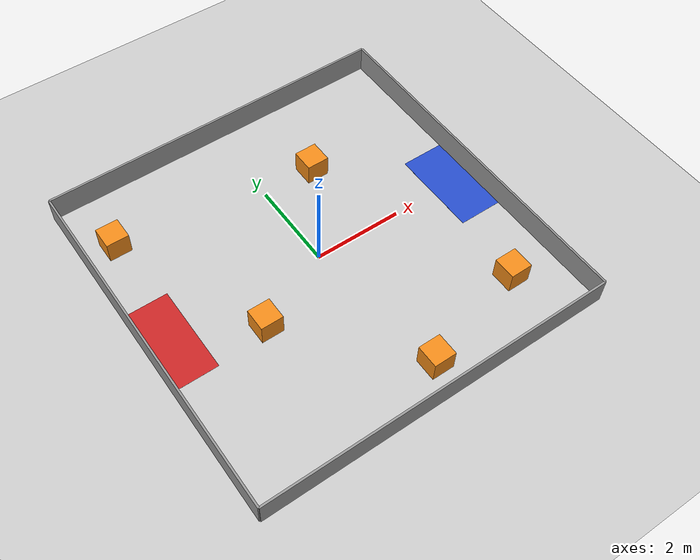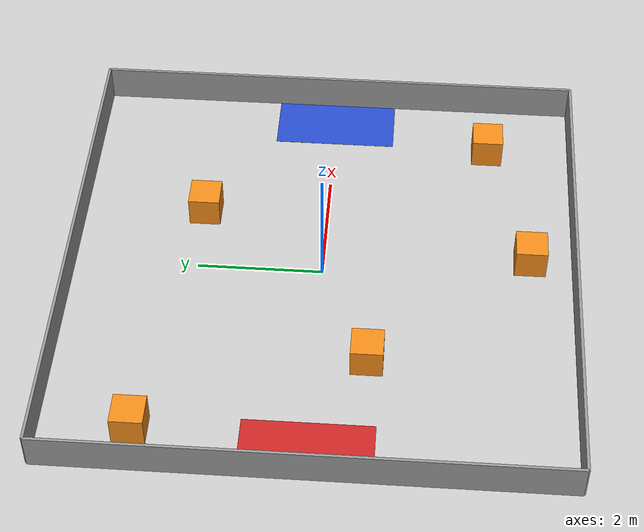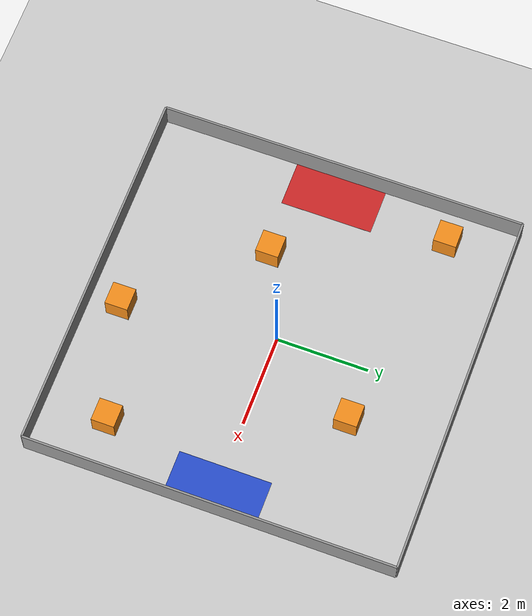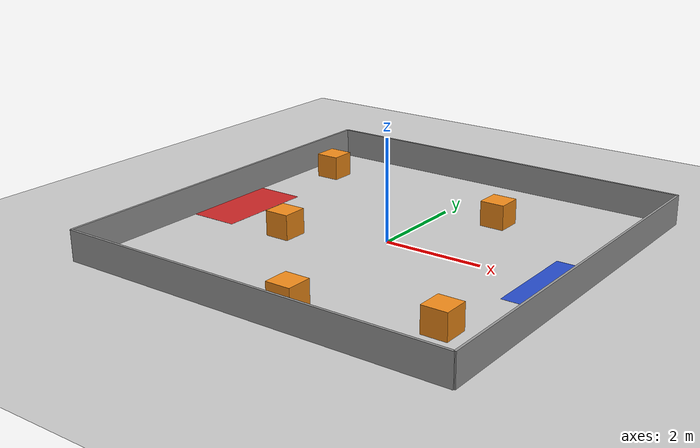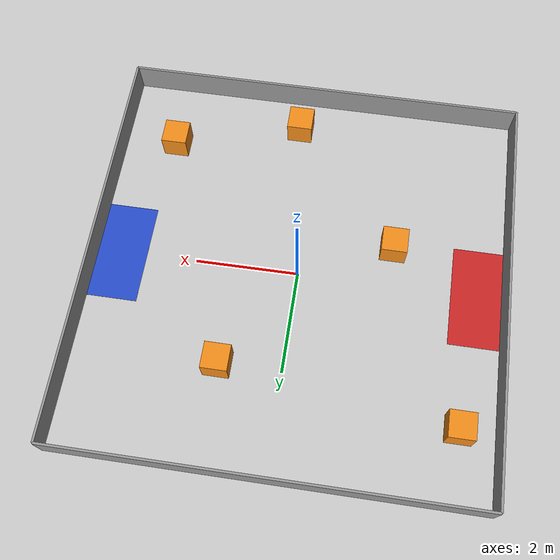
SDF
<?xml version="1.0" ?>
<sdf version="1.7">
  <world name="totami">

    <physics type='ode'>
      <real_time_update_rate>1000</real_time_update_rate>
      <max_step_size>0.001</max_step_size>
      <real_time_factor>1</real_time_factor>
      <ode>
        <solver>
          <type>quick</type>
          <iters>150</iters>
          <precon_iters>0</precon_iters>
          <sor>1.4</sor>
          <use_dynamic_moi_rescaling>1</use_dynamic_moi_rescaling>
        </solver>
        <constraints>
          <cfm>1e-05</cfm>
          <erp>0.2</erp>
          <!-- Как в maze.world: при 2000 ODE выталкивал проникающие контакты
               почти любой скоростью и акселерометр IMU шумел на +-1.6 м/с2 у
               стоящего робота. -->
          <contact_max_correcting_vel>100</contact_max_correcting_vel>
          <contact_surface_layer>0.001</contact_surface_layer>
        </constraints>
      </ode>
    </physics>

    <gravity>0 0 -9.8</gravity>
    <magnetic_field>6e-06 2.3e-05 -4.2e-05</magnetic_field>
    <atmosphere type='adiabatic' />
    <scene>
      <ambient>0.4 0.4 0.4 1</ambient>
      <background>0.7 0.7 0.7 1</background>
      <shadows>1</shadows>
    </scene>

    <light name='sun' type='directional'>
      <cast_shadows>1</cast_shadows>
      <pose>0 0 10 0 -0 0</pose>
      <diffuse>0.8 0.8 0.8 1</diffuse>
      <specular>0.2 0.2 0.2 1</specular>
      <attenuation>
        <range>1000</range>
        <constant>0.9</constant>
        <linear>0.01</linear>
        <quadratic>0.001</quadratic>
      </attenuation>
      <direction>-0.5 0.1 -0.9</direction>
      <spot>
        <inner_angle>0</inner_angle>
        <outer_angle>0</outer_angle>
        <falloff>0</falloff>
      </spot>
    </light>

    <model name='ground_plane'>
      <static>1</static>
      <link name='link'>
        <collision name='collision'>
          <geometry>
            <plane>
              <normal>0 0 1</normal>
              <size>100 100</size>
            </plane>
          </geometry>
          <surface>
            <friction>
              <ode>
                <mu>100</mu>
                <mu2>50</mu2>
              </ode>
              <torsional>
                <ode />
              </torsional>
            </friction>
            <contact>
              <ode />
            </contact>
            <bounce />
          </surface>
          <max_contacts>10</max_contacts>
        </collision>
        <visual name='visual'>
          <cast_shadows>0</cast_shadows>
          <geometry>
            <plane>
              <normal>0 0 1</normal>
              <size>100 100</size>
            </plane>
          </geometry>
          <material>
            <script>
              <uri>file://media/materials/scripts/gazebo.material</uri>
              <name>Gazebo/Grey</name>
            </script>
          </material>
        </visual>
        <self_collide>0</self_collide>
        <enable_wind>0</enable_wind>
        <kinematic>0</kinematic>
      </link>
    </model>

    <model name='totami_built'>
      <static>1</static>
      <link name="Wall_North">
        <collision name="Wall_North_Collision">
          <geometry>
            <box>
              <size>8.0 0.045 0.6</size>
            </box>
          </geometry>
          <pose>0 0 0.3 0 -0 0</pose>
          <max_contacts>10</max_contacts>
          <surface>
            <contact>
              <ode />
            </contact>
            <bounce />
            <friction>
              <torsional>
                <ode />
              </torsional>
              <ode />
            </friction>
          </surface>
        </collision>
        <visual name="Wall_North_Visual">
          <pose>0 0 0.3 0 -0 0</pose>
          <geometry>
            <box>
              <size>8.0 0.045 0.6</size>
            </box>
          </geometry>
          <material>
            <script>
              <uri>file://media/materials/scripts/gazebo.material</uri>
              <name>Gazebo/Grey</name>
            </script>
            <ambient>1 1 1 1</ambient>
          </material>
          <meta>
            <layer>0</layer>
          </meta>
        </visual>
        <pose>0.0 4.0 0 0 -0 0.0</pose>
        <self_collide>0</self_collide>
        <enable_wind>0</enable_wind>
        <kinematic>0</kinematic>
      </link>
      <link name="Wall_South">
        <collision name="Wall_South_Collision">
          <geometry>
            <box>
              <size>8.0 0.045 0.6</size>
            </box>
          </geometry>
          <pose>0 0 0.3 0 -0 0</pose>
          <max_contacts>10</max_contacts>
          <surface>
            <contact>
              <ode />
            </contact>
            <bounce />
            <friction>
              <torsional>
                <ode />
              </torsional>
              <ode />
            </friction>
          </surface>
        </collision>
        <visual name="Wall_South_Visual">
          <pose>0 0 0.3 0 -0 0</pose>
          <geometry>
            <box>
              <size>8.0 0.045 0.6</size>
            </box>
          </geometry>
          <material>
            <script>
              <uri>file://media/materials/scripts/gazebo.material</uri>
              <name>Gazebo/Grey</name>
            </script>
            <ambient>1 1 1 1</ambient>
          </material>
          <meta>
            <layer>0</layer>
          </meta>
        </visual>
        <pose>0.0 -4.0 0 0 -0 0.0</pose>
        <self_collide>0</self_collide>
        <enable_wind>0</enable_wind>
        <kinematic>0</kinematic>
      </link>
      <link name="Wall_East">
        <collision name="Wall_East_Collision">
          <geometry>
            <box>
              <size>8.0 0.045 0.6</size>
            </box>
          </geometry>
          <pose>0 0 0.3 0 -0 0</pose>
          <max_contacts>10</max_contacts>
          <surface>
            <contact>
              <ode />
            </contact>
            <bounce />
            <friction>
              <torsional>
                <ode />
              </torsional>
              <ode />
            </friction>
          </surface>
        </collision>
        <visual name="Wall_East_Visual">
          <pose>0 0 0.3 0 -0 0</pose>
          <geometry>
            <box>
              <size>8.0 0.045 0.6</size>
            </box>
          </geometry>
          <material>
            <script>
              <uri>file://media/materials/scripts/gazebo.material</uri>
              <name>Gazebo/Grey</name>
            </script>
            <ambient>1 1 1 1</ambient>
          </material>
          <meta>
            <layer>0</layer>
          </meta>
        </visual>
        <pose>4.0 0.0 0 0 -0 1.5708</pose>
        <self_collide>0</self_collide>
        <enable_wind>0</enable_wind>
        <kinematic>0</kinematic>
      </link>
      <link name="Wall_West">
        <collision name="Wall_West_Collision">
          <geometry>
            <box>
              <size>8.0 0.045 0.6</size>
            </box>
          </geometry>
          <pose>0 0 0.3 0 -0 0</pose>
          <max_contacts>10</max_contacts>
          <surface>
            <contact>
              <ode />
            </contact>
            <bounce />
            <friction>
              <torsional>
                <ode />
              </torsional>
              <ode />
            </friction>
          </surface>
        </collision>
        <visual name="Wall_West_Visual">
          <pose>0 0 0.3 0 -0 0</pose>
          <geometry>
            <box>
              <size>8.0 0.045 0.6</size>
            </box>
          </geometry>
          <material>
            <script>
              <uri>file://media/materials/scripts/gazebo.material</uri>
              <name>Gazebo/Grey</name>
            </script>
            <ambient>1 1 1 1</ambient>
          </material>
          <meta>
            <layer>0</layer>
          </meta>
        </visual>
        <pose>-4.0 0.0 0 0 -0 1.5708</pose>
        <self_collide>0</self_collide>
        <enable_wind>0</enable_wind>
        <kinematic>0</kinematic>
      </link>
      <link name="Pad_Blue">
        <visual name="Pad_Blue_Visual">
          <pose>0 0 0 0 -0 0</pose>
          <geometry>
            <box>
              <size>1.0 2.0 0.001</size>
            </box>
          </geometry>
          <material>
            <script>
              <uri>file://media/materials/scripts/gazebo.material</uri>
              <name>Gazebo/Blue</name>
            </script>
            <ambient>1 1 1 1</ambient>
          </material>
          <meta>
            <layer>0</layer>
          </meta>
        </visual>
        <pose>3.5 0.0 0.001 0 -0 0</pose>
        <self_collide>0</self_collide>
        <enable_wind>0</enable_wind>
        <kinematic>0</kinematic>
      </link>
      <link name="Pad_Red">
        <visual name="Pad_Red_Visual">
          <pose>0 0 0 0 -0 0</pose>
          <geometry>
            <box>
              <size>1.0 2.0 0.001</size>
            </box>
          </geometry>
          <material>
            <script>
              <uri>file://media/materials/scripts/gazebo.material</uri>
              <name>Gazebo/Red</name>
            </script>
            <ambient>1 1 1 1</ambient>
          </material>
          <meta>
            <layer>0</layer>
          </meta>
        </visual>
        <pose>-3.5 0.0 0.001 0 -0 0</pose>
        <self_collide>0</self_collide>
        <enable_wind>0</enable_wind>
        <kinematic>0</kinematic>
      </link>
      <pose>0 0 0 0 -0 0</pose>
    </model>

    <model name='Obstacle_1'>
      <static>1</static>
      <pose>1.2 2.0 0 0 -0 0</pose>
      <link name='link'>
        <collision name='collision'>
          <geometry>
            <box>
              <size>0.5 0.5 0.5</size>
            </box>
          </geometry>
          <pose>0 0 0.25 0 -0 0</pose>
          <max_contacts>10</max_contacts>
          <surface>
            <contact>
              <ode />
            </contact>
            <bounce />
            <friction>
              <torsional>
                <ode />
              </torsional>
              <ode />
            </friction>
          </surface>
        </collision>
        <visual name='visual'>
          <pose>0 0 0.25 0 -0 0</pose>
          <geometry>
            <box>
              <size>0.5 0.5 0.5</size>
            </box>
          </geometry>
          <material>
            <script>
              <uri>file://media/materials/scripts/gazebo.material</uri>
              <name>Gazebo/Orange</name>
            </script>
            <ambient>1 1 1 1</ambient>
          </material>
        </visual>
        <self_collide>0</self_collide>
        <enable_wind>0</enable_wind>
        <kinematic>0</kinematic>
      </link>
    </model>

    <model name='Obstacle_2'>
      <static>1</static>
      <pose>-1.8 -0.8 0 0 -0 0</pose>
      <link name='link'>
        <collision name='collision'>
          <geometry>
            <box>
              <size>0.5 0.5 0.5</size>
            </box>
          </geometry>
          <pose>0 0 0.25 0 -0 0</pose>
          <max_contacts>10</max_contacts>
          <surface>
            <contact>
              <ode />
            </contact>
            <bounce />
            <friction>
              <torsional>
                <ode />
              </torsional>
              <ode />
            </friction>
          </surface>
        </collision>
        <visual name='visual'>
          <pose>0 0 0.25 0 -0 0</pose>
          <geometry>
            <box>
              <size>0.5 0.5 0.5</size>
            </box>
          </geometry>
          <material>
            <script>
              <uri>file://media/materials/scripts/gazebo.material</uri>
              <name>Gazebo/Orange</name>
            </script>
            <ambient>1 1 1 1</ambient>
          </material>
        </visual>
        <self_collide>0</self_collide>
        <enable_wind>0</enable_wind>
        <kinematic>0</kinematic>
      </link>
    </model>

    <model name='Obstacle_3'>
      <static>1</static>
      <pose>2.9 -2.6 0 0 -0 0</pose>
      <link name='link'>
        <collision name='collision'>
          <geometry>
            <box>
              <size>0.5 0.5 0.5</size>
            </box>
          </geometry>
          <pose>0 0 0.25 0 -0 0</pose>
          <max_contacts>10</max_contacts>
          <surface>
            <contact>
              <ode />
            </contact>
            <bounce />
            <friction>
              <torsional>
                <ode />
              </torsional>
              <ode />
            </friction>
          </surface>
        </collision>
        <visual name='visual'>
          <pose>0 0 0.25 0 -0 0</pose>
          <geometry>
            <box>
              <size>0.5 0.5 0.5</size>
            </box>
          </geometry>
          <material>
            <script>
              <uri>file://media/materials/scripts/gazebo.material</uri>
              <name>Gazebo/Orange</name>
            </script>
            <ambient>1 1 1 1</ambient>
          </material>
        </visual>
        <self_collide>0</self_collide>
        <enable_wind>0</enable_wind>
        <kinematic>0</kinematic>
      </link>
    </model>

    <model name='Obstacle_4'>
      <static>1</static>
      <pose>-3.3 2.6 0 0 -0 0</pose>
      <link name='link'>
        <collision name='collision'>
          <geometry>
            <box>
              <size>0.5 0.5 0.5</size>
            </box>
          </geometry>
          <pose>0 0 0.25 0 -0 0</pose>
          <max_contacts>10</max_contacts>
          <surface>
            <contact>
              <ode />
            </contact>
            <bounce />
            <friction>
              <torsional>
                <ode />
              </torsional>
              <ode />
            </friction>
          </surface>
        </collision>
        <visual name='visual'>
          <pose>0 0 0.25 0 -0 0</pose>
          <geometry>
            <box>
              <size>0.5 0.5 0.5</size>
            </box>
          </geometry>
          <material>
            <script>
              <uri>file://media/materials/scripts/gazebo.material</uri>
              <name>Gazebo/Orange</name>
            </script>
            <ambient>1 1 1 1</ambient>
          </material>
        </visual>
        <self_collide>0</self_collide>
        <enable_wind>0</enable_wind>
        <kinematic>0</kinematic>
      </link>
    </model>

    <model name='Obstacle_5'>
      <static>1</static>
      <pose>0.4 -3.3 0 0 -0 0</pose>
      <link name='link'>
        <collision name='collision'>
          <geometry>
            <box>
              <size>0.5 0.5 0.5</size>
            </box>
          </geometry>
          <pose>0 0 0.25 0 -0 0</pose>
          <max_contacts>10</max_contacts>
          <surface>
            <contact>
              <ode />
            </contact>
            <bounce />
            <friction>
              <torsional>
                <ode />
              </torsional>
              <ode />
            </friction>
          </surface>
        </collision>
        <visual name='visual'>
          <pose>0 0 0.25 0 -0 0</pose>
          <geometry>
            <box>
              <size>0.5 0.5 0.5</size>
            </box>
          </geometry>
          <material>
            <script>
              <uri>file://media/materials/scripts/gazebo.material</uri>
              <name>Gazebo/Orange</name>
            </script>
            <ambient>1 1 1 1</ambient>
          </material>
        </visual>
        <self_collide>0</self_collide>
        <enable_wind>0</enable_wind>
        <kinematic>0</kinematic>
      </link>
    </model>
  </world>
</sdf>
